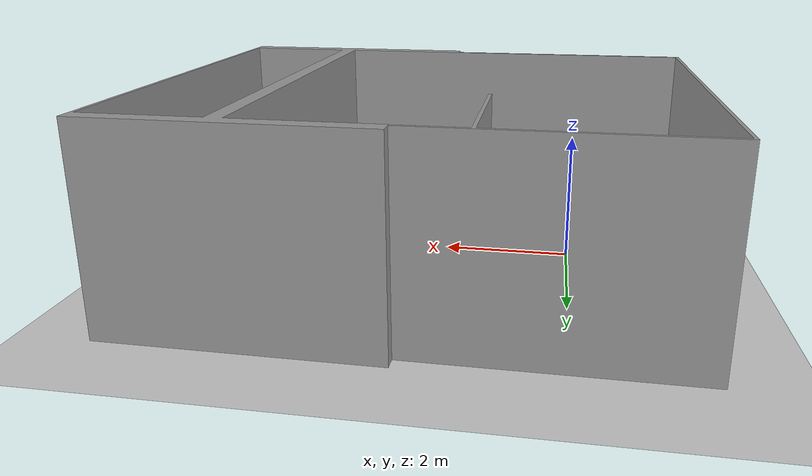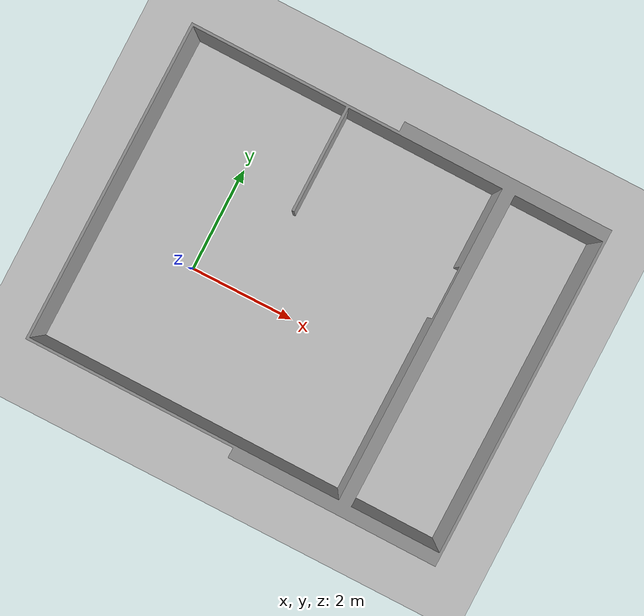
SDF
<sdf version="1.7">
 <world name="default">
  <light name="sun" type="directional">
   <pose>0 0 10 0 -0 0</pose>
   <diffuse>0.8 0.8 0.8 1</diffuse>
   <specular>0.2 0.2 0.2 1</specular>
   <attenuation>
    <range>1000</range>
    <constant>0.9</constant>
    <linear>0.01</linear>
    <quadratic>0.001</quadratic>
   </attenuation>
   <direction>-0.5 0.1 -0.9</direction>
   <spot><inner_angle>0</inner_angle><outer_angle>0</outer_angle><falloff>0</falloff></spot>
  </light>
  <model name="ground_plane">
   <static>1</static>
   <link name="link">
    <collision name="collision">
     <geometry><plane><normal>0 0 1</normal><size>100 100</size></plane></geometry>
     <surface><friction><ode><mu>100</mu><mu2>50</mu2></ode></friction></surface>
    </collision>
    <visual name="visual">
     <cast_shadows>0</cast_shadows>
     <geometry><plane><normal>0 0 1</normal><size>100 100</size></plane></geometry>
     <material>
      <script><uri>file://media/materials/scripts/gazebo.material</uri><name>Gazebo/Grey</name></script>
     </material>
    </visual>
   </link>
  </model>
  <gravity>0 0 -9.8</gravity>
  <magnetic_field>6e-06 2.3e-05 -4.2e-05</magnetic_field>
  <atmosphere type="adiabatic"/>
  <physics type="ode">
   <max_step_size>0.001</max_step_size>
   <real_time_factor>1</real_time_factor>
   <real_time_update_rate>1000</real_time_update_rate>
  </physics>
  <scene><ambient>0.4 0.4 0.4 1</ambient><background>0.7 0.7 0.7 1</background><shadows>1</shadows></scene>
  <audio><device>default</device></audio>
  <spherical_coordinates>
   <surface_model>EARTH_WGS84</surface_model>
   <latitude_deg>0</latitude_deg>
   <longitude_deg>0</longitude_deg>
   <elevation>0</elevation>
   <heading_deg>0</heading_deg>
  </spherical_coordinates>
  <model name="ai4work_forschungsraum_v4.2">
   <static>1</static>
   <link name="link">
    <visual name="visual">
     <geometry>
      <mesh><uri>model://ai4work_forschungsraum_v4.2/ai4work_forschungsraum_v4.stl</uri><scale>1 1 1</scale></mesh>
     </geometry>
     <material>
      <script><uri>file://media/materials/scripts/gazebo.material</uri><name>Gazebo/Grey</name></script>
     </material>
    </visual>
    <collision name="collision">
     <geometry>
      <mesh><uri>model://ai4work_forschungsraum_v4.2/ai4work_forschungsraum_v4.stl</uri><scale>1 1 1</scale></mesh>
     </geometry>
     <surface>
      <contact><ode><max_vel>0.1</max_vel><min_depth>0.001</min_depth></ode></contact>
      <friction><ode><mu>1</mu><mu2>1</mu2></ode></friction>
     </surface>
    </collision>
   </link>
   <pose>-1.83137 3.71309 0 0 0 -1.5764</pose>
  </model>
 </world>
</sdf>
